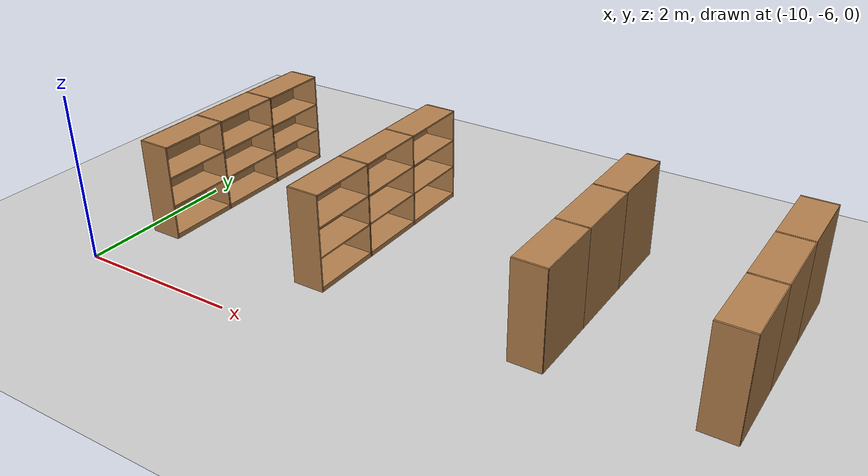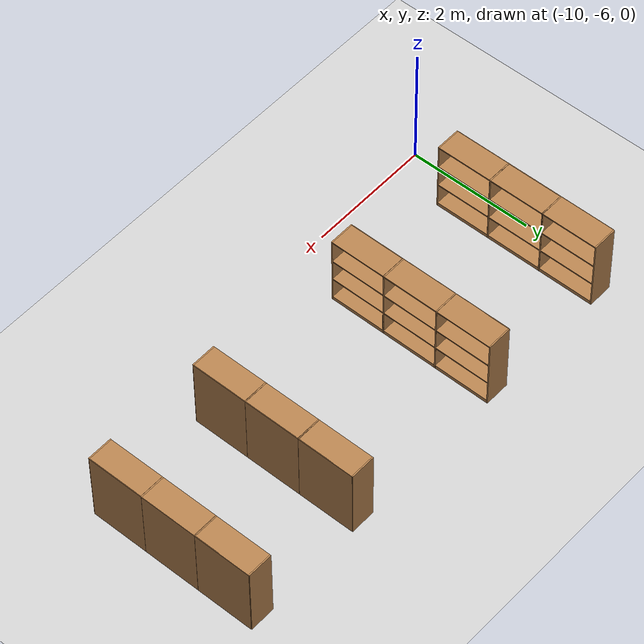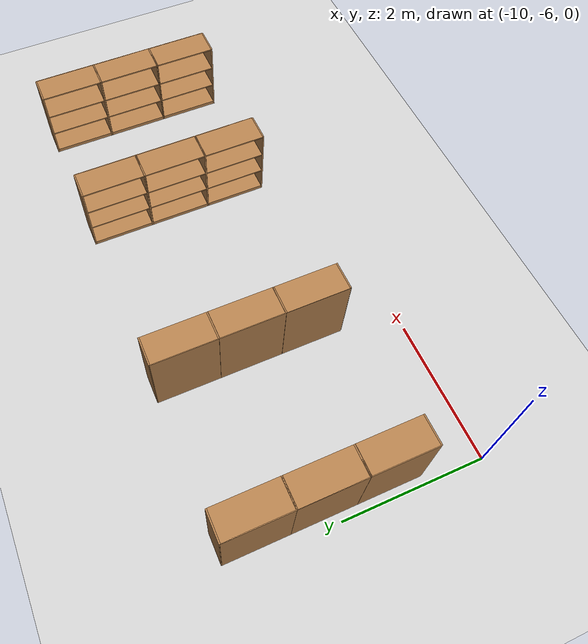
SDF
<sdf version="1.6">
 <world name="default">
  <model name="Bookself-3_0_clone_10_clone_8">
   <model name="bookshelf_0">
    <static>1</static>
    <link name="link">
     <inertial><mass>1</mass></inertial>
     <collision name="back">
      <pose>0 0.005 0.6 0 -0 0</pose>
      <geometry><box><size>0.9 0.01 1.2</size></box></geometry>
     </collision>
     <visual name="visual1">
      <pose>0 0.005 0.6 0 -0 0</pose>
      <geometry><box><size>0.9 0.01 1.2</size></box></geometry>
      <material>
       <script><uri>file://media/materials/scripts/gazebo.material</uri><name>Gazebo/Wood</name></script>
      </material>
     </visual>
     <collision name="left_side">
      <pose>0.45 -0.195 0.6 0 -0 0</pose>
      <geometry><box><size>0.02 0.4 1.2</size></box></geometry>
     </collision>
     <visual name="visual2">
      <pose>0.45 -0.195 0.6 0 -0 0</pose>
      <geometry><box><size>0.02 0.4 1.2</size></box></geometry>
      <material>
       <script><uri>file://media/materials/scripts/gazebo.material</uri><name>Gazebo/Wood</name></script>
      </material>
     </visual>
     <collision name="right_side">
      <pose>-0.45 -0.195 0.6 0 -0 0</pose>
      <geometry><box><size>0.02 0.4 1.2</size></box></geometry>
     </collision>
     <visual name="visual3">
      <pose>-0.45 -0.195 0.6 0 -0 0</pose>
      <geometry><box><size>0.02 0.4 1.2</size></box></geometry>
      <material>
       <script><uri>file://media/materials/scripts/gazebo.material</uri><name>Gazebo/Wood</name></script>
      </material>
     </visual>
     <collision name="bottom">
      <pose>0 -0.195 0.03 0 -0 0</pose>
      <geometry><box><size>0.88 0.4 0.06</size></box></geometry>
     </collision>
     <visual name="visual4">
      <pose>0 -0.195 0.03 0 -0 0</pose>
      <geometry><box><size>0.88 0.4 0.06</size></box></geometry>
      <material>
       <script><uri>file://media/materials/scripts/gazebo.material</uri><name>Gazebo/Wood</name></script>
      </material>
     </visual>
     <collision name="top">
      <pose>0 -0.195 1.19 0 -0 0</pose>
      <geometry><box><size>0.88 0.4 0.02</size></box></geometry>
     </collision>
     <visual name="visual5">
      <pose>0 -0.195 1.19 0 -0 0</pose>
      <geometry><box><size>0.88 0.4 0.02</size></box></geometry>
      <material>
       <script><uri>file://media/materials/scripts/gazebo.material</uri><name>Gazebo/Wood</name></script>
      </material>
     </visual>
     <collision name="low_shelf">
      <pose>0 -0.195 0.43 0 -0 0</pose>
      <geometry><box><size>0.88 0.4 0.02</size></box></geometry>
     </collision>
     <visual name="visual6">
      <pose>0 -0.195 0.43 0 -0 0</pose>
      <geometry><box><size>0.88 0.4 0.02</size></box></geometry>
      <material>
       <script><uri>file://media/materials/scripts/gazebo.material</uri><name>Gazebo/Wood</name></script>
      </material>
     </visual>
     <collision name="high_shelf">
      <pose>0 -0.195 0.8 0 -0 0</pose>
      <geometry><box><size>0.88 0.4 0.02</size></box></geometry>
     </collision>
     <visual name="visual7">
      <pose>0 -0.195 0.8 0 -0 0</pose>
      <geometry><box><size>0.88 0.4 0.02</size></box></geometry>
      <material>
       <script><uri>file://media/materials/scripts/gazebo.material</uri><name>Gazebo/Wood</name></script>
      </material>
     </visual>
    </link>
    <pose>-0.903039 0 0 0 -0 0</pose>
   </model>
   <model name="bookshelf_1">
    <static>1</static>
    <link name="link">
     <inertial><mass>1</mass></inertial>
     <collision name="back">
      <pose>0 0.005 0.6 0 -0 0</pose>
      <geometry><box><size>0.9 0.01 1.2</size></box></geometry>
     </collision>
     <visual name="visual1">
      <pose>0 0.005 0.6 0 -0 0</pose>
      <geometry><box><size>0.9 0.01 1.2</size></box></geometry>
      <material>
       <script><uri>file://media/materials/scripts/gazebo.material</uri><name>Gazebo/Wood</name></script>
      </material>
     </visual>
     <collision name="left_side">
      <pose>0.45 -0.195 0.6 0 -0 0</pose>
      <geometry><box><size>0.02 0.4 1.2</size></box></geometry>
     </collision>
     <visual name="visual2">
      <pose>0.45 -0.195 0.6 0 -0 0</pose>
      <geometry><box><size>0.02 0.4 1.2</size></box></geometry>
      <material>
       <script><uri>file://media/materials/scripts/gazebo.material</uri><name>Gazebo/Wood</name></script>
      </material>
     </visual>
     <collision name="right_side">
      <pose>-0.45 -0.195 0.6 0 -0 0</pose>
      <geometry><box><size>0.02 0.4 1.2</size></box></geometry>
     </collision>
     <visual name="visual3">
      <pose>-0.45 -0.195 0.6 0 -0 0</pose>
      <geometry><box><size>0.02 0.4 1.2</size></box></geometry>
      <material>
       <script><uri>file://media/materials/scripts/gazebo.material</uri><name>Gazebo/Wood</name></script>
      </material>
     </visual>
     <collision name="bottom">
      <pose>0 -0.195 0.03 0 -0 0</pose>
      <geometry><box><size>0.88 0.4 0.06</size></box></geometry>
     </collision>
     <visual name="visual4">
      <pose>0 -0.195 0.03 0 -0 0</pose>
      <geometry><box><size>0.88 0.4 0.06</size></box></geometry>
      <material>
       <script><uri>file://media/materials/scripts/gazebo.material</uri><name>Gazebo/Wood</name></script>
      </material>
     </visual>
     <collision name="top">
      <pose>0 -0.195 1.19 0 -0 0</pose>
      <geometry><box><size>0.88 0.4 0.02</size></box></geometry>
     </collision>
     <visual name="visual5">
      <pose>0 -0.195 1.19 0 -0 0</pose>
      <geometry><box><size>0.88 0.4 0.02</size></box></geometry>
      <material>
       <script><uri>file://media/materials/scripts/gazebo.material</uri><name>Gazebo/Wood</name></script>
      </material>
     </visual>
     <collision name="low_shelf">
      <pose>0 -0.195 0.43 0 -0 0</pose>
      <geometry><box><size>0.88 0.4 0.02</size></box></geometry>
     </collision>
     <visual name="visual6">
      <pose>0 -0.195 0.43 0 -0 0</pose>
      <geometry><box><size>0.88 0.4 0.02</size></box></geometry>
      <material>
       <script><uri>file://media/materials/scripts/gazebo.material</uri><name>Gazebo/Wood</name></script>
      </material>
     </visual>
     <collision name="high_shelf">
      <pose>0 -0.195 0.8 0 -0 0</pose>
      <geometry><box><size>0.88 0.4 0.02</size></box></geometry>
     </collision>
     <visual name="visual7">
      <pose>0 -0.195 0.8 0 -0 0</pose>
      <geometry><box><size>0.88 0.4 0.02</size></box></geometry>
      <material>
       <script><uri>file://media/materials/scripts/gazebo.material</uri><name>Gazebo/Wood</name></script>
      </material>
     </visual>
    </link>
    <pose>0.000535 0 0 0 -0 0</pose>
   </model>
   <model name="bookshelf_1_clone">
    <static>1</static>
    <link name="link">
     <inertial><mass>1</mass></inertial>
     <collision name="back">
      <pose>0 0.005 0.6 0 -0 0</pose>
      <geometry><box><size>0.9 0.01 1.2</size></box></geometry>
     </collision>
     <visual name="visual1">
      <pose>0 0.005 0.6 0 -0 0</pose>
      <geometry><box><size>0.9 0.01 1.2</size></box></geometry>
      <material>
       <script><uri>file://media/materials/scripts/gazebo.material</uri><name>Gazebo/Wood</name></script>
      </material>
     </visual>
     <collision name="left_side">
      <pose>0.45 -0.195 0.6 0 -0 0</pose>
      <geometry><box><size>0.02 0.4 1.2</size></box></geometry>
     </collision>
     <visual name="visual2">
      <pose>0.45 -0.195 0.6 0 -0 0</pose>
      <geometry><box><size>0.02 0.4 1.2</size></box></geometry>
      <material>
       <script><uri>file://media/materials/scripts/gazebo.material</uri><name>Gazebo/Wood</name></script>
      </material>
     </visual>
     <collision name="right_side">
      <pose>-0.45 -0.195 0.6 0 -0 0</pose>
      <geometry><box><size>0.02 0.4 1.2</size></box></geometry>
     </collision>
     <visual name="visual3">
      <pose>-0.45 -0.195 0.6 0 -0 0</pose>
      <geometry><box><size>0.02 0.4 1.2</size></box></geometry>
      <material>
       <script><uri>file://media/materials/scripts/gazebo.material</uri><name>Gazebo/Wood</name></script>
      </material>
     </visual>
     <collision name="bottom">
      <pose>0 -0.195 0.03 0 -0 0</pose>
      <geometry><box><size>0.88 0.4 0.06</size></box></geometry>
     </collision>
     <visual name="visual4">
      <pose>0 -0.195 0.03 0 -0 0</pose>
      <geometry><box><size>0.88 0.4 0.06</size></box></geometry>
      <material>
       <script><uri>file://media/materials/scripts/gazebo.material</uri><name>Gazebo/Wood</name></script>
      </material>
     </visual>
     <collision name="top">
      <pose>0 -0.195 1.19 0 -0 0</pose>
      <geometry><box><size>0.88 0.4 0.02</size></box></geometry>
     </collision>
     <visual name="visual5">
      <pose>0 -0.195 1.19 0 -0 0</pose>
      <geometry><box><size>0.88 0.4 0.02</size></box></geometry>
      <material>
       <script><uri>file://media/materials/scripts/gazebo.material</uri><name>Gazebo/Wood</name></script>
      </material>
     </visual>
     <collision name="low_shelf">
      <pose>0 -0.195 0.43 0 -0 0</pose>
      <geometry><box><size>0.88 0.4 0.02</size></box></geometry>
     </collision>
     <visual name="visual6">
      <pose>0 -0.195 0.43 0 -0 0</pose>
      <geometry><box><size>0.88 0.4 0.02</size></box></geometry>
      <material>
       <script><uri>file://media/materials/scripts/gazebo.material</uri><name>Gazebo/Wood</name></script>
      </material>
     </visual>
     <collision name="high_shelf">
      <pose>0 -0.195 0.8 0 -0 0</pose>
      <geometry><box><size>0.88 0.4 0.02</size></box></geometry>
     </collision>
     <visual name="visual7">
      <pose>0 -0.195 0.8 0 -0 0</pose>
      <geometry><box><size>0.88 0.4 0.02</size></box></geometry>
      <material>
       <script><uri>file://media/materials/scripts/gazebo.material</uri><name>Gazebo/Wood</name></script>
      </material>
     </visual>
    </link>
    <pose>0.902502 0 0 0 -0 0</pose>
   </model>
   <static>1</static>
   <pose>-9.88007 -3.82035 0 0 -0 1.5707</pose>
  </model>
  <model name="Bookself-3_0_clone_10_clone_8_clone">
   <model name="bookshelf_0">
    <static>1</static>
    <link name="link">
     <inertial><mass>1</mass></inertial>
     <collision name="back">
      <pose>0 0.005 0.6 0 -0 0</pose>
      <geometry><box><size>0.9 0.01 1.2</size></box></geometry>
     </collision>
     <visual name="visual1">
      <pose>0 0.005 0.6 0 -0 0</pose>
      <geometry><box><size>0.9 0.01 1.2</size></box></geometry>
      <material>
       <script><uri>file://media/materials/scripts/gazebo.material</uri><name>Gazebo/Wood</name></script>
      </material>
     </visual>
     <collision name="left_side">
      <pose>0.45 -0.195 0.6 0 -0 0</pose>
      <geometry><box><size>0.02 0.4 1.2</size></box></geometry>
     </collision>
     <visual name="visual2">
      <pose>0.45 -0.195 0.6 0 -0 0</pose>
      <geometry><box><size>0.02 0.4 1.2</size></box></geometry>
      <material>
       <script><uri>file://media/materials/scripts/gazebo.material</uri><name>Gazebo/Wood</name></script>
      </material>
     </visual>
     <collision name="right_side">
      <pose>-0.45 -0.195 0.6 0 -0 0</pose>
      <geometry><box><size>0.02 0.4 1.2</size></box></geometry>
     </collision>
     <visual name="visual3">
      <pose>-0.45 -0.195 0.6 0 -0 0</pose>
      <geometry><box><size>0.02 0.4 1.2</size></box></geometry>
      <material>
       <script><uri>file://media/materials/scripts/gazebo.material</uri><name>Gazebo/Wood</name></script>
      </material>
     </visual>
     <collision name="bottom">
      <pose>0 -0.195 0.03 0 -0 0</pose>
      <geometry><box><size>0.88 0.4 0.06</size></box></geometry>
     </collision>
     <visual name="visual4">
      <pose>0 -0.195 0.03 0 -0 0</pose>
      <geometry><box><size>0.88 0.4 0.06</size></box></geometry>
      <material>
       <script><uri>file://media/materials/scripts/gazebo.material</uri><name>Gazebo/Wood</name></script>
      </material>
     </visual>
     <collision name="top">
      <pose>0 -0.195 1.19 0 -0 0</pose>
      <geometry><box><size>0.88 0.4 0.02</size></box></geometry>
     </collision>
     <visual name="visual5">
      <pose>0 -0.195 1.19 0 -0 0</pose>
      <geometry><box><size>0.88 0.4 0.02</size></box></geometry>
      <material>
       <script><uri>file://media/materials/scripts/gazebo.material</uri><name>Gazebo/Wood</name></script>
      </material>
     </visual>
     <collision name="low_shelf">
      <pose>0 -0.195 0.43 0 -0 0</pose>
      <geometry><box><size>0.88 0.4 0.02</size></box></geometry>
     </collision>
     <visual name="visual6">
      <pose>0 -0.195 0.43 0 -0 0</pose>
      <geometry><box><size>0.88 0.4 0.02</size></box></geometry>
      <material>
       <script><uri>file://media/materials/scripts/gazebo.material</uri><name>Gazebo/Wood</name></script>
      </material>
     </visual>
     <collision name="high_shelf">
      <pose>0 -0.195 0.8 0 -0 0</pose>
      <geometry><box><size>0.88 0.4 0.02</size></box></geometry>
     </collision>
     <visual name="visual7">
      <pose>0 -0.195 0.8 0 -0 0</pose>
      <geometry><box><size>0.88 0.4 0.02</size></box></geometry>
      <material>
       <script><uri>file://media/materials/scripts/gazebo.material</uri><name>Gazebo/Wood</name></script>
      </material>
     </visual>
    </link>
    <pose>-0.903039 0 0 0 -0 0</pose>
   </model>
   <model name="bookshelf_1">
    <static>1</static>
    <link name="link">
     <inertial><mass>1</mass></inertial>
     <collision name="back">
      <pose>0 0.005 0.6 0 -0 0</pose>
      <geometry><box><size>0.9 0.01 1.2</size></box></geometry>
     </collision>
     <visual name="visual1">
      <pose>0 0.005 0.6 0 -0 0</pose>
      <geometry><box><size>0.9 0.01 1.2</size></box></geometry>
      <material>
       <script><uri>file://media/materials/scripts/gazebo.material</uri><name>Gazebo/Wood</name></script>
      </material>
     </visual>
     <collision name="left_side">
      <pose>0.45 -0.195 0.6 0 -0 0</pose>
      <geometry><box><size>0.02 0.4 1.2</size></box></geometry>
     </collision>
     <visual name="visual2">
      <pose>0.45 -0.195 0.6 0 -0 0</pose>
      <geometry><box><size>0.02 0.4 1.2</size></box></geometry>
      <material>
       <script><uri>file://media/materials/scripts/gazebo.material</uri><name>Gazebo/Wood</name></script>
      </material>
     </visual>
     <collision name="right_side">
      <pose>-0.45 -0.195 0.6 0 -0 0</pose>
      <geometry><box><size>0.02 0.4 1.2</size></box></geometry>
     </collision>
     <visual name="visual3">
      <pose>-0.45 -0.195 0.6 0 -0 0</pose>
      <geometry><box><size>0.02 0.4 1.2</size></box></geometry>
      <material>
       <script><uri>file://media/materials/scripts/gazebo.material</uri><name>Gazebo/Wood</name></script>
      </material>
     </visual>
     <collision name="bottom">
      <pose>0 -0.195 0.03 0 -0 0</pose>
      <geometry><box><size>0.88 0.4 0.06</size></box></geometry>
     </collision>
     <visual name="visual4">
      <pose>0 -0.195 0.03 0 -0 0</pose>
      <geometry><box><size>0.88 0.4 0.06</size></box></geometry>
      <material>
       <script><uri>file://media/materials/scripts/gazebo.material</uri><name>Gazebo/Wood</name></script>
      </material>
     </visual>
     <collision name="top">
      <pose>0 -0.195 1.19 0 -0 0</pose>
      <geometry><box><size>0.88 0.4 0.02</size></box></geometry>
     </collision>
     <visual name="visual5">
      <pose>0 -0.195 1.19 0 -0 0</pose>
      <geometry><box><size>0.88 0.4 0.02</size></box></geometry>
      <material>
       <script><uri>file://media/materials/scripts/gazebo.material</uri><name>Gazebo/Wood</name></script>
      </material>
     </visual>
     <collision name="low_shelf">
      <pose>0 -0.195 0.43 0 -0 0</pose>
      <geometry><box><size>0.88 0.4 0.02</size></box></geometry>
     </collision>
     <visual name="visual6">
      <pose>0 -0.195 0.43 0 -0 0</pose>
      <geometry><box><size>0.88 0.4 0.02</size></box></geometry>
      <material>
       <script><uri>file://media/materials/scripts/gazebo.material</uri><name>Gazebo/Wood</name></script>
      </material>
     </visual>
     <collision name="high_shelf">
      <pose>0 -0.195 0.8 0 -0 0</pose>
      <geometry><box><size>0.88 0.4 0.02</size></box></geometry>
     </collision>
     <visual name="visual7">
      <pose>0 -0.195 0.8 0 -0 0</pose>
      <geometry><box><size>0.88 0.4 0.02</size></box></geometry>
      <material>
       <script><uri>file://media/materials/scripts/gazebo.material</uri><name>Gazebo/Wood</name></script>
      </material>
     </visual>
    </link>
    <pose>0.000535 0 0 0 -0 0</pose>
   </model>
   <model name="bookshelf_1_clone">
    <static>1</static>
    <link name="link">
     <inertial><mass>1</mass></inertial>
     <collision name="back">
      <pose>0 0.005 0.6 0 -0 0</pose>
      <geometry><box><size>0.9 0.01 1.2</size></box></geometry>
     </collision>
     <visual name="visual1">
      <pose>0 0.005 0.6 0 -0 0</pose>
      <geometry><box><size>0.9 0.01 1.2</size></box></geometry>
      <material>
       <script><uri>file://media/materials/scripts/gazebo.material</uri><name>Gazebo/Wood</name></script>
      </material>
     </visual>
     <collision name="left_side">
      <pose>0.45 -0.195 0.6 0 -0 0</pose>
      <geometry><box><size>0.02 0.4 1.2</size></box></geometry>
     </collision>
     <visual name="visual2">
      <pose>0.45 -0.195 0.6 0 -0 0</pose>
      <geometry><box><size>0.02 0.4 1.2</size></box></geometry>
      <material>
       <script><uri>file://media/materials/scripts/gazebo.material</uri><name>Gazebo/Wood</name></script>
      </material>
     </visual>
     <collision name="right_side">
      <pose>-0.45 -0.195 0.6 0 -0 0</pose>
      <geometry><box><size>0.02 0.4 1.2</size></box></geometry>
     </collision>
     <visual name="visual3">
      <pose>-0.45 -0.195 0.6 0 -0 0</pose>
      <geometry><box><size>0.02 0.4 1.2</size></box></geometry>
      <material>
       <script><uri>file://media/materials/scripts/gazebo.material</uri><name>Gazebo/Wood</name></script>
      </material>
     </visual>
     <collision name="bottom">
      <pose>0 -0.195 0.03 0 -0 0</pose>
      <geometry><box><size>0.88 0.4 0.06</size></box></geometry>
     </collision>
     <visual name="visual4">
      <pose>0 -0.195 0.03 0 -0 0</pose>
      <geometry><box><size>0.88 0.4 0.06</size></box></geometry>
      <material>
       <script><uri>file://media/materials/scripts/gazebo.material</uri><name>Gazebo/Wood</name></script>
      </material>
     </visual>
     <collision name="top">
      <pose>0 -0.195 1.19 0 -0 0</pose>
      <geometry><box><size>0.88 0.4 0.02</size></box></geometry>
     </collision>
     <visual name="visual5">
      <pose>0 -0.195 1.19 0 -0 0</pose>
      <geometry><box><size>0.88 0.4 0.02</size></box></geometry>
      <material>
       <script><uri>file://media/materials/scripts/gazebo.material</uri><name>Gazebo/Wood</name></script>
      </material>
     </visual>
     <collision name="low_shelf">
      <pose>0 -0.195 0.43 0 -0 0</pose>
      <geometry><box><size>0.88 0.4 0.02</size></box></geometry>
     </collision>
     <visual name="visual6">
      <pose>0 -0.195 0.43 0 -0 0</pose>
      <geometry><box><size>0.88 0.4 0.02</size></box></geometry>
      <material>
       <script><uri>file://media/materials/scripts/gazebo.material</uri><name>Gazebo/Wood</name></script>
      </material>
     </visual>
     <collision name="high_shelf">
      <pose>0 -0.195 0.8 0 -0 0</pose>
      <geometry><box><size>0.88 0.4 0.02</size></box></geometry>
     </collision>
     <visual name="visual7">
      <pose>0 -0.195 0.8 0 -0 0</pose>
      <geometry><box><size>0.88 0.4 0.02</size></box></geometry>
      <material>
       <script><uri>file://media/materials/scripts/gazebo.material</uri><name>Gazebo/Wood</name></script>
      </material>
     </visual>
    </link>
    <pose>0.902502 0 0 0 -0 0</pose>
   </model>
   <static>1</static>
   <pose>-7.66992 -3.82038 0 0 -0 1.5707</pose>
  </model>
  <model name="Bookself-3_0_clone_10_clone_8_clone_0">
   <model name="bookshelf_0">
    <static>1</static>
    <link name="link">
     <inertial><mass>1</mass></inertial>
     <collision name="back">
      <pose>0 0.005 0.6 0 -0 0</pose>
      <geometry><box><size>0.9 0.01 1.2</size></box></geometry>
     </collision>
     <visual name="visual1">
      <pose>0 0.005 0.6 0 -0 0</pose>
      <geometry><box><size>0.9 0.01 1.2</size></box></geometry>
      <material>
       <script><uri>file://media/materials/scripts/gazebo.material</uri><name>Gazebo/Wood</name></script>
      </material>
     </visual>
     <collision name="left_side">
      <pose>0.45 -0.195 0.6 0 -0 0</pose>
      <geometry><box><size>0.02 0.4 1.2</size></box></geometry>
     </collision>
     <visual name="visual2">
      <pose>0.45 -0.195 0.6 0 -0 0</pose>
      <geometry><box><size>0.02 0.4 1.2</size></box></geometry>
      <material>
       <script><uri>file://media/materials/scripts/gazebo.material</uri><name>Gazebo/Wood</name></script>
      </material>
     </visual>
     <collision name="right_side">
      <pose>-0.45 -0.195 0.6 0 -0 0</pose>
      <geometry><box><size>0.02 0.4 1.2</size></box></geometry>
     </collision>
     <visual name="visual3">
      <pose>-0.45 -0.195 0.6 0 -0 0</pose>
      <geometry><box><size>0.02 0.4 1.2</size></box></geometry>
      <material>
       <script><uri>file://media/materials/scripts/gazebo.material</uri><name>Gazebo/Wood</name></script>
      </material>
     </visual>
     <collision name="bottom">
      <pose>0 -0.195 0.03 0 -0 0</pose>
      <geometry><box><size>0.88 0.4 0.06</size></box></geometry>
     </collision>
     <visual name="visual4">
      <pose>0 -0.195 0.03 0 -0 0</pose>
      <geometry><box><size>0.88 0.4 0.06</size></box></geometry>
      <material>
       <script><uri>file://media/materials/scripts/gazebo.material</uri><name>Gazebo/Wood</name></script>
      </material>
     </visual>
     <collision name="top">
      <pose>0 -0.195 1.19 0 -0 0</pose>
      <geometry><box><size>0.88 0.4 0.02</size></box></geometry>
     </collision>
     <visual name="visual5">
      <pose>0 -0.195 1.19 0 -0 0</pose>
      <geometry><box><size>0.88 0.4 0.02</size></box></geometry>
      <material>
       <script><uri>file://media/materials/scripts/gazebo.material</uri><name>Gazebo/Wood</name></script>
      </material>
     </visual>
     <collision name="low_shelf">
      <pose>0 -0.195 0.43 0 -0 0</pose>
      <geometry><box><size>0.88 0.4 0.02</size></box></geometry>
     </collision>
     <visual name="visual6">
      <pose>0 -0.195 0.43 0 -0 0</pose>
      <geometry><box><size>0.88 0.4 0.02</size></box></geometry>
      <material>
       <script><uri>file://media/materials/scripts/gazebo.material</uri><name>Gazebo/Wood</name></script>
      </material>
     </visual>
     <collision name="high_shelf">
      <pose>0 -0.195 0.8 0 -0 0</pose>
      <geometry><box><size>0.88 0.4 0.02</size></box></geometry>
     </collision>
     <visual name="visual7">
      <pose>0 -0.195 0.8 0 -0 0</pose>
      <geometry><box><size>0.88 0.4 0.02</size></box></geometry>
      <material>
       <script><uri>file://media/materials/scripts/gazebo.material</uri><name>Gazebo/Wood</name></script>
      </material>
     </visual>
    </link>
    <pose>-0.903039 0 0 0 -0 0</pose>
   </model>
   <model name="bookshelf_1">
    <static>1</static>
    <link name="link">
     <inertial><mass>1</mass></inertial>
     <collision name="back">
      <pose>0 0.005 0.6 0 -0 0</pose>
      <geometry><box><size>0.9 0.01 1.2</size></box></geometry>
     </collision>
     <visual name="visual1">
      <pose>0 0.005 0.6 0 -0 0</pose>
      <geometry><box><size>0.9 0.01 1.2</size></box></geometry>
      <material>
       <script><uri>file://media/materials/scripts/gazebo.material</uri><name>Gazebo/Wood</name></script>
      </material>
     </visual>
     <collision name="left_side">
      <pose>0.45 -0.195 0.6 0 -0 0</pose>
      <geometry><box><size>0.02 0.4 1.2</size></box></geometry>
     </collision>
     <visual name="visual2">
      <pose>0.45 -0.195 0.6 0 -0 0</pose>
      <geometry><box><size>0.02 0.4 1.2</size></box></geometry>
      <material>
       <script><uri>file://media/materials/scripts/gazebo.material</uri><name>Gazebo/Wood</name></script>
      </material>
     </visual>
     <collision name="right_side">
      <pose>-0.45 -0.195 0.6 0 -0 0</pose>
      <geometry><box><size>0.02 0.4 1.2</size></box></geometry>
     </collision>
     <visual name="visual3">
      <pose>-0.45 -0.195 0.6 0 -0 0</pose>
      <geometry><box><size>0.02 0.4 1.2</size></box></geometry>
      <material>
       <script><uri>file://media/materials/scripts/gazebo.material</uri><name>Gazebo/Wood</name></script>
      </material>
     </visual>
     <collision name="bottom">
      <pose>0 -0.195 0.03 0 -0 0</pose>
      <geometry><box><size>0.88 0.4 0.06</size></box></geometry>
     </collision>
     <visual name="visual4">
      <pose>0 -0.195 0.03 0 -0 0</pose>
      <geometry><box><size>0.88 0.4 0.06</size></box></geometry>
      <material>
       <script><uri>file://media/materials/scripts/gazebo.material</uri><name>Gazebo/Wood</name></script>
      </material>
     </visual>
     <collision name="top">
      <pose>0 -0.195 1.19 0 -0 0</pose>
      <geometry><box><size>0.88 0.4 0.02</size></box></geometry>
     </collision>
     <visual name="visual5">
      <pose>0 -0.195 1.19 0 -0 0</pose>
      <geometry><box><size>0.88 0.4 0.02</size></box></geometry>
      <material>
       <script><uri>file://media/materials/scripts/gazebo.material</uri><name>Gazebo/Wood</name></script>
      </material>
     </visual>
     <collision name="low_shelf">
      <pose>0 -0.195 0.43 0 -0 0</pose>
      <geometry><box><size>0.88 0.4 0.02</size></box></geometry>
     </collision>
     <visual name="visual6">
      <pose>0 -0.195 0.43 0 -0 0</pose>
      <geometry><box><size>0.88 0.4 0.02</size></box></geometry>
      <material>
       <script><uri>file://media/materials/scripts/gazebo.material</uri><name>Gazebo/Wood</name></script>
      </material>
     </visual>
     <collision name="high_shelf">
      <pose>0 -0.195 0.8 0 -0 0</pose>
      <geometry><box><size>0.88 0.4 0.02</size></box></geometry>
     </collision>
     <visual name="visual7">
      <pose>0 -0.195 0.8 0 -0 0</pose>
      <geometry><box><size>0.88 0.4 0.02</size></box></geometry>
      <material>
       <script><uri>file://media/materials/scripts/gazebo.material</uri><name>Gazebo/Wood</name></script>
      </material>
     </visual>
    </link>
    <pose>0.000535 0 0 0 -0 0</pose>
   </model>
   <model name="bookshelf_1_clone">
    <static>1</static>
    <link name="link">
     <inertial><mass>1</mass></inertial>
     <collision name="back">
      <pose>0 0.005 0.6 0 -0 0</pose>
      <geometry><box><size>0.9 0.01 1.2</size></box></geometry>
     </collision>
     <visual name="visual1">
      <pose>0 0.005 0.6 0 -0 0</pose>
      <geometry><box><size>0.9 0.01 1.2</size></box></geometry>
      <material>
       <script><uri>file://media/materials/scripts/gazebo.material</uri><name>Gazebo/Wood</name></script>
      </material>
     </visual>
     <collision name="left_side">
      <pose>0.45 -0.195 0.6 0 -0 0</pose>
      <geometry><box><size>0.02 0.4 1.2</size></box></geometry>
     </collision>
     <visual name="visual2">
      <pose>0.45 -0.195 0.6 0 -0 0</pose>
      <geometry><box><size>0.02 0.4 1.2</size></box></geometry>
      <material>
       <script><uri>file://media/materials/scripts/gazebo.material</uri><name>Gazebo/Wood</name></script>
      </material>
     </visual>
     <collision name="right_side">
      <pose>-0.45 -0.195 0.6 0 -0 0</pose>
      <geometry><box><size>0.02 0.4 1.2</size></box></geometry>
     </collision>
     <visual name="visual3">
      <pose>-0.45 -0.195 0.6 0 -0 0</pose>
      <geometry><box><size>0.02 0.4 1.2</size></box></geometry>
      <material>
       <script><uri>file://media/materials/scripts/gazebo.material</uri><name>Gazebo/Wood</name></script>
      </material>
     </visual>
     <collision name="bottom">
      <pose>0 -0.195 0.03 0 -0 0</pose>
      <geometry><box><size>0.88 0.4 0.06</size></box></geometry>
     </collision>
     <visual name="visual4">
      <pose>0 -0.195 0.03 0 -0 0</pose>
      <geometry><box><size>0.88 0.4 0.06</size></box></geometry>
      <material>
       <script><uri>file://media/materials/scripts/gazebo.material</uri><name>Gazebo/Wood</name></script>
      </material>
     </visual>
     <collision name="top">
      <pose>0 -0.195 1.19 0 -0 0</pose>
      <geometry><box><size>0.88 0.4 0.02</size></box></geometry>
     </collision>
     <visual name="visual5">
      <pose>0 -0.195 1.19 0 -0 0</pose>
      <geometry><box><size>0.88 0.4 0.02</size></box></geometry>
      <material>
       <script><uri>file://media/materials/scripts/gazebo.material</uri><name>Gazebo/Wood</name></script>
      </material>
     </visual>
     <collision name="low_shelf">
      <pose>0 -0.195 0.43 0 -0 0</pose>
      <geometry><box><size>0.88 0.4 0.02</size></box></geometry>
     </collision>
     <visual name="visual6">
      <pose>0 -0.195 0.43 0 -0 0</pose>
      <geometry><box><size>0.88 0.4 0.02</size></box></geometry>
      <material>
       <script><uri>file://media/materials/scripts/gazebo.material</uri><name>Gazebo/Wood</name></script>
      </material>
     </visual>
     <collision name="high_shelf">
      <pose>0 -0.195 0.8 0 -0 0</pose>
      <geometry><box><size>0.88 0.4 0.02</size></box></geometry>
     </collision>
     <visual name="visual7">
      <pose>0 -0.195 0.8 0 -0 0</pose>
      <geometry><box><size>0.88 0.4 0.02</size></box></geometry>
      <material>
       <script><uri>file://media/materials/scripts/gazebo.material</uri><name>Gazebo/Wood</name></script>
      </material>
     </visual>
    </link>
    <pose>0.902502 0 0 0 -0 0</pose>
   </model>
   <static>1</static>
   <pose>-4.56266 -3.8203 0.000865 0 0 -1.5707</pose>
  </model>
  <model name="Bookself-3_0_clone_10_clone_8_clone_0_clone">
   <model name="bookshelf_0">
    <static>1</static>
    <link name="link">
     <inertial><mass>1</mass></inertial>
     <collision name="back">
      <pose>0 0.005 0.6 0 -0 0</pose>
      <geometry><box><size>0.9 0.01 1.2</size></box></geometry>
     </collision>
     <visual name="visual1">
      <pose>0 0.005 0.6 0 -0 0</pose>
      <geometry><box><size>0.9 0.01 1.2</size></box></geometry>
      <material>
       <script><uri>file://media/materials/scripts/gazebo.material</uri><name>Gazebo/Wood</name></script>
      </material>
     </visual>
     <collision name="left_side">
      <pose>0.45 -0.195 0.6 0 -0 0</pose>
      <geometry><box><size>0.02 0.4 1.2</size></box></geometry>
     </collision>
     <visual name="visual2">
      <pose>0.45 -0.195 0.6 0 -0 0</pose>
      <geometry><box><size>0.02 0.4 1.2</size></box></geometry>
      <material>
       <script><uri>file://media/materials/scripts/gazebo.material</uri><name>Gazebo/Wood</name></script>
      </material>
     </visual>
     <collision name="right_side">
      <pose>-0.45 -0.195 0.6 0 -0 0</pose>
      <geometry><box><size>0.02 0.4 1.2</size></box></geometry>
     </collision>
     <visual name="visual3">
      <pose>-0.45 -0.195 0.6 0 -0 0</pose>
      <geometry><box><size>0.02 0.4 1.2</size></box></geometry>
      <material>
       <script><uri>file://media/materials/scripts/gazebo.material</uri><name>Gazebo/Wood</name></script>
      </material>
     </visual>
     <collision name="bottom">
      <pose>0 -0.195 0.03 0 -0 0</pose>
      <geometry><box><size>0.88 0.4 0.06</size></box></geometry>
     </collision>
     <visual name="visual4">
      <pose>0 -0.195 0.03 0 -0 0</pose>
      <geometry><box><size>0.88 0.4 0.06</size></box></geometry>
      <material>
       <script><uri>file://media/materials/scripts/gazebo.material</uri><name>Gazebo/Wood</name></script>
      </material>
     </visual>
     <collision name="top">
      <pose>0 -0.195 1.19 0 -0 0</pose>
      <geometry><box><size>0.88 0.4 0.02</size></box></geometry>
     </collision>
     <visual name="visual5">
      <pose>0 -0.195 1.19 0 -0 0</pose>
      <geometry><box><size>0.88 0.4 0.02</size></box></geometry>
      <material>
       <script><uri>file://media/materials/scripts/gazebo.material</uri><name>Gazebo/Wood</name></script>
      </material>
     </visual>
     <collision name="low_shelf">
      <pose>0 -0.195 0.43 0 -0 0</pose>
      <geometry><box><size>0.88 0.4 0.02</size></box></geometry>
     </collision>
     <visual name="visual6">
      <pose>0 -0.195 0.43 0 -0 0</pose>
      <geometry><box><size>0.88 0.4 0.02</size></box></geometry>
      <material>
       <script><uri>file://media/materials/scripts/gazebo.material</uri><name>Gazebo/Wood</name></script>
      </material>
     </visual>
     <collision name="high_shelf">
      <pose>0 -0.195 0.8 0 -0 0</pose>
      <geometry><box><size>0.88 0.4 0.02</size></box></geometry>
     </collision>
     <visual name="visual7">
      <pose>0 -0.195 0.8 0 -0 0</pose>
      <geometry><box><size>0.88 0.4 0.02</size></box></geometry>
      <material>
       <script><uri>file://media/materials/scripts/gazebo.material</uri><name>Gazebo/Wood</name></script>
      </material>
     </visual>
    </link>
    <pose>-0.903039 0 0 0 -0 0</pose>
   </model>
   <model name="bookshelf_1">
    <static>1</static>
    <link name="link">
     <inertial><mass>1</mass></inertial>
     <collision name="back">
      <pose>0 0.005 0.6 0 -0 0</pose>
      <geometry><box><size>0.9 0.01 1.2</size></box></geometry>
     </collision>
     <visual name="visual1">
      <pose>0 0.005 0.6 0 -0 0</pose>
      <geometry><box><size>0.9 0.01 1.2</size></box></geometry>
      <material>
       <script><uri>file://media/materials/scripts/gazebo.material</uri><name>Gazebo/Wood</name></script>
      </material>
     </visual>
     <collision name="left_side">
      <pose>0.45 -0.195 0.6 0 -0 0</pose>
      <geometry><box><size>0.02 0.4 1.2</size></box></geometry>
     </collision>
     <visual name="visual2">
      <pose>0.45 -0.195 0.6 0 -0 0</pose>
      <geometry><box><size>0.02 0.4 1.2</size></box></geometry>
      <material>
       <script><uri>file://media/materials/scripts/gazebo.material</uri><name>Gazebo/Wood</name></script>
      </material>
     </visual>
     <collision name="right_side">
      <pose>-0.45 -0.195 0.6 0 -0 0</pose>
      <geometry><box><size>0.02 0.4 1.2</size></box></geometry>
     </collision>
     <visual name="visual3">
      <pose>-0.45 -0.195 0.6 0 -0 0</pose>
      <geometry><box><size>0.02 0.4 1.2</size></box></geometry>
      <material>
       <script><uri>file://media/materials/scripts/gazebo.material</uri><name>Gazebo/Wood</name></script>
      </material>
     </visual>
     <collision name="bottom">
      <pose>0 -0.195 0.03 0 -0 0</pose>
      <geometry><box><size>0.88 0.4 0.06</size></box></geometry>
     </collision>
     <visual name="visual4">
      <pose>0 -0.195 0.03 0 -0 0</pose>
      <geometry><box><size>0.88 0.4 0.06</size></box></geometry>
      <material>
       <script><uri>file://media/materials/scripts/gazebo.material</uri><name>Gazebo/Wood</name></script>
      </material>
     </visual>
     <collision name="top">
      <pose>0 -0.195 1.19 0 -0 0</pose>
      <geometry><box><size>0.88 0.4 0.02</size></box></geometry>
     </collision>
     <visual name="visual5">
      <pose>0 -0.195 1.19 0 -0 0</pose>
      <geometry><box><size>0.88 0.4 0.02</size></box></geometry>
      <material>
       <script><uri>file://media/materials/scripts/gazebo.material</uri><name>Gazebo/Wood</name></script>
      </material>
     </visual>
     <collision name="low_shelf">
      <pose>0 -0.195 0.43 0 -0 0</pose>
      <geometry><box><size>0.88 0.4 0.02</size></box></geometry>
     </collision>
     <visual name="visual6">
      <pose>0 -0.195 0.43 0 -0 0</pose>
      <geometry><box><size>0.88 0.4 0.02</size></box></geometry>
      <material>
       <script><uri>file://media/materials/scripts/gazebo.material</uri><name>Gazebo/Wood</name></script>
      </material>
     </visual>
     <collision name="high_shelf">
      <pose>0 -0.195 0.8 0 -0 0</pose>
      <geometry><box><size>0.88 0.4 0.02</size></box></geometry>
     </collision>
     <visual name="visual7">
      <pose>0 -0.195 0.8 0 -0 0</pose>
      <geometry><box><size>0.88 0.4 0.02</size></box></geometry>
      <material>
       <script><uri>file://media/materials/scripts/gazebo.material</uri><name>Gazebo/Wood</name></script>
      </material>
     </visual>
    </link>
    <pose>0.000535 0 0 0 -0 0</pose>
   </model>
   <model name="bookshelf_1_clone">
    <static>1</static>
    <link name="link">
     <inertial><mass>1</mass></inertial>
     <collision name="back">
      <pose>0 0.005 0.6 0 -0 0</pose>
      <geometry><box><size>0.9 0.01 1.2</size></box></geometry>
     </collision>
     <visual name="visual1">
      <pose>0 0.005 0.6 0 -0 0</pose>
      <geometry><box><size>0.9 0.01 1.2</size></box></geometry>
      <material>
       <script><uri>file://media/materials/scripts/gazebo.material</uri><name>Gazebo/Wood</name></script>
      </material>
     </visual>
     <collision name="left_side">
      <pose>0.45 -0.195 0.6 0 -0 0</pose>
      <geometry><box><size>0.02 0.4 1.2</size></box></geometry>
     </collision>
     <visual name="visual2">
      <pose>0.45 -0.195 0.6 0 -0 0</pose>
      <geometry><box><size>0.02 0.4 1.2</size></box></geometry>
      <material>
       <script><uri>file://media/materials/scripts/gazebo.material</uri><name>Gazebo/Wood</name></script>
      </material>
     </visual>
     <collision name="right_side">
      <pose>-0.45 -0.195 0.6 0 -0 0</pose>
      <geometry><box><size>0.02 0.4 1.2</size></box></geometry>
     </collision>
     <visual name="visual3">
      <pose>-0.45 -0.195 0.6 0 -0 0</pose>
      <geometry><box><size>0.02 0.4 1.2</size></box></geometry>
      <material>
       <script><uri>file://media/materials/scripts/gazebo.material</uri><name>Gazebo/Wood</name></script>
      </material>
     </visual>
     <collision name="bottom">
      <pose>0 -0.195 0.03 0 -0 0</pose>
      <geometry><box><size>0.88 0.4 0.06</size></box></geometry>
     </collision>
     <visual name="visual4">
      <pose>0 -0.195 0.03 0 -0 0</pose>
      <geometry><box><size>0.88 0.4 0.06</size></box></geometry>
      <material>
       <script><uri>file://media/materials/scripts/gazebo.material</uri><name>Gazebo/Wood</name></script>
      </material>
     </visual>
     <collision name="top">
      <pose>0 -0.195 1.19 0 -0 0</pose>
      <geometry><box><size>0.88 0.4 0.02</size></box></geometry>
     </collision>
     <visual name="visual5">
      <pose>0 -0.195 1.19 0 -0 0</pose>
      <geometry><box><size>0.88 0.4 0.02</size></box></geometry>
      <material>
       <script><uri>file://media/materials/scripts/gazebo.material</uri><name>Gazebo/Wood</name></script>
      </material>
     </visual>
     <collision name="low_shelf">
      <pose>0 -0.195 0.43 0 -0 0</pose>
      <geometry><box><size>0.88 0.4 0.02</size></box></geometry>
     </collision>
     <visual name="visual6">
      <pose>0 -0.195 0.43 0 -0 0</pose>
      <geometry><box><size>0.88 0.4 0.02</size></box></geometry>
      <material>
       <script><uri>file://media/materials/scripts/gazebo.material</uri><name>Gazebo/Wood</name></script>
      </material>
     </visual>
     <collision name="high_shelf">
      <pose>0 -0.195 0.8 0 -0 0</pose>
      <geometry><box><size>0.88 0.4 0.02</size></box></geometry>
     </collision>
     <visual name="visual7">
      <pose>0 -0.195 0.8 0 -0 0</pose>
      <geometry><box><size>0.88 0.4 0.02</size></box></geometry>
      <material>
       <script><uri>file://media/materials/scripts/gazebo.material</uri><name>Gazebo/Wood</name></script>
      </material>
     </visual>
    </link>
    <pose>0.902502 0 0 0 -0 0</pose>
   </model>
   <static>1</static>
   <pose>-2.61281 -3.80505 0.000865 0 0 -1.5707</pose>
  </model>
  <model name="ground_plane">
   <static>1</static>
   <link name="link">
    <collision name="collision">
     <geometry><plane><normal>0 0 1</normal><size>100 100</size></plane></geometry>
     <surface><friction><ode><mu>100</mu><mu2>50</mu2></ode></friction></surface>
    </collision>
    <visual name="visual">
     <cast_shadows>0</cast_shadows>
     <geometry><plane><normal>0 0 1</normal><size>100 100</size></plane></geometry>
     <material>
      <script><uri>file://media/materials/scripts/gazebo.material</uri><name>Gazebo/Grey</name></script>
     </material>
    </visual>
   </link>
   <pose>1.79627 -1.63715 0 0 -0 0</pose>
  </model>
 </world>
</sdf>
